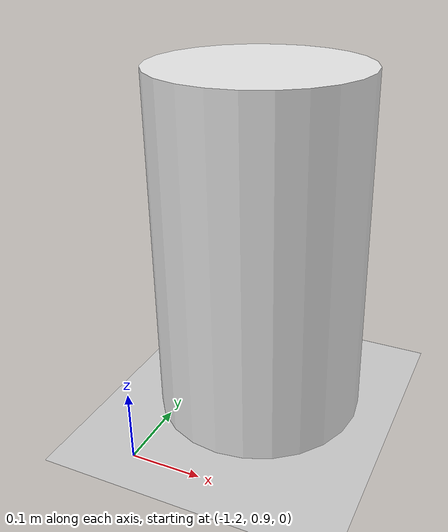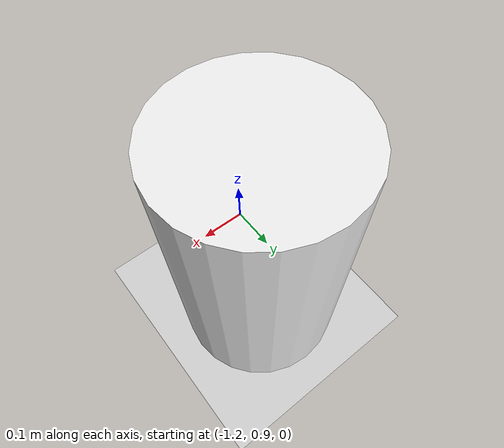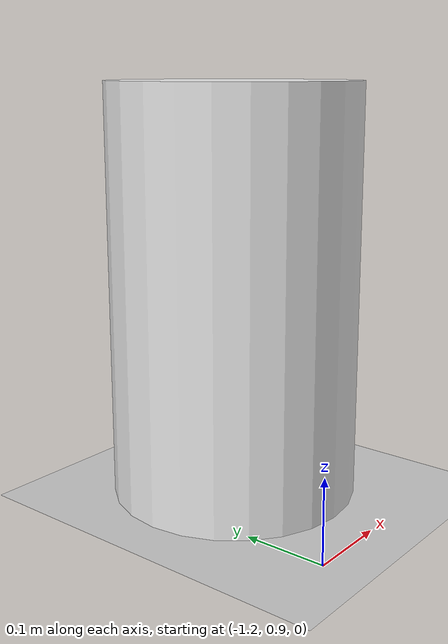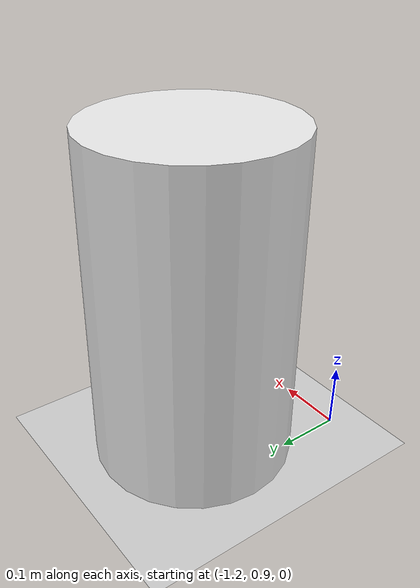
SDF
<?xml version="1.0"?>
<sdf version="1.6">
  <world name="default">
    <plugin filename="gz-sim-physics-system" name="gz::sim::systems::Physics"></plugin>
    <plugin filename="gz-sim-user-commands-system" name="gz::sim::systems::UserCommands"></plugin>
    <plugin filename="gz-sim-scene-broadcaster-system" name="gz::sim::systems::SceneBroadcaster"></plugin>
    <plugin filename="gz-sim-sensors-system" name="gz::sim::systems::Sensors">
      <render_engine>ogre2</render_engine>
    </plugin>
    <plugin filename="gz-sim-imu-system" name="gz::sim::systems::Imu"></plugin>

    <include>
      <uri>model://ground_plane</uri>
    </include>

    <include>
      <uri>model://sun</uri>
    </include>

    <scene>
      <shadows>false</shadows>
    </scene>

    <gui fullscreen='0'>
      <camera name='user_camera'>
        <pose frame=''>-4.3 -0.7 1.3 0 0.333 0.121</pose>
        <view_controller>orbit</view_controller>
        <projection_type>perspective</projection_type>
      </camera>
    </gui>

    <physics type="ode">
      <real_time_update_rate>1000.0</real_time_update_rate>
      <max_step_size>0.001</max_step_size>
      <real_time_factor>1</real_time_factor>
      <ode>
        <solver>
          <type>quick</type>
          <iters>150</iters>
          <precon_iters>0</precon_iters>
          <sor>1.400000</sor>
          <use_dynamic_moi_rescaling>1</use_dynamic_moi_rescaling>
        </solver>
        <constraints>
          <cfm>0.00001</cfm>
          <erp>0.2</erp>
          <contact_max_correcting_vel>2000.000000</contact_max_correcting_vel>
          <contact_surface_layer>0.01000</contact_surface_layer>
        </constraints>
      </ode>
    </physics>

    <model name="turtlebot3_pillar_world">
      <static>1</static>
      <include>
        <uri>model://turtlebot3_pillar_world</uri>
      </include>
    </model>

  </world>
</sdf>

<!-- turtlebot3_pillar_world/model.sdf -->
<sdf version='1.5'>
    <!-- Draw Circle -->
    <model name='ros_symbol'>
      <static>1</static>
      <link name='symbol'>
        <collision name='one_three'>
          <pose>-1.1 1.1 0.25 0 0 0</pose>
          <geometry>
            <cylinder>
              <radius>0.15</radius>
              <length>0.5</length>
            </cylinder>
          </geometry>
          <max_contacts>10</max_contacts>
          <surface>
            <bounce/>
            <friction>
              <ode/>
            </friction>
            <contact>
              <ode/>
            </contact>
          </surface>
        </collision>

        <visual name='one_three'>
          <pose>-1.1 1.1 0.25 0 0 0</pose>
          <geometry>
            <cylinder>
              <radius>0.15</radius>
              <length>0.5</length>
            </cylinder>
          </geometry>
          <material>
            <script>
              <uri>file://media/materials/scripts/gazebo.material</uri>
              <name>Gazebo/White</name>
            </script>
          </material>
        </visual>
    </link>
  </model>
</sdf>
